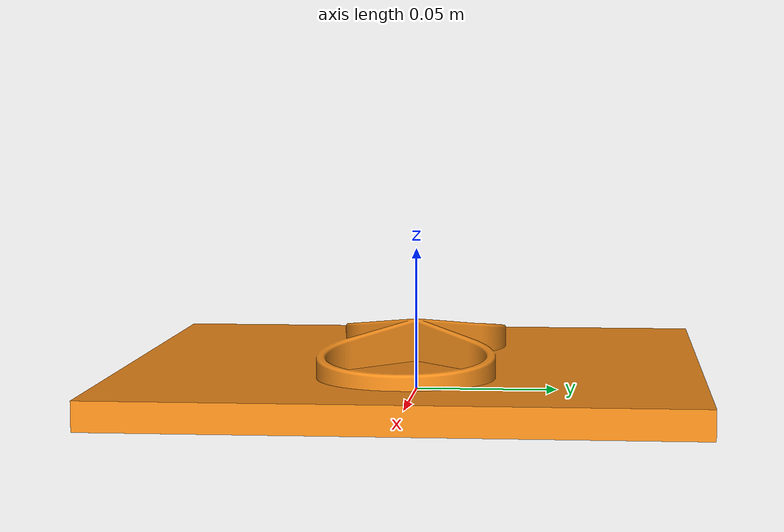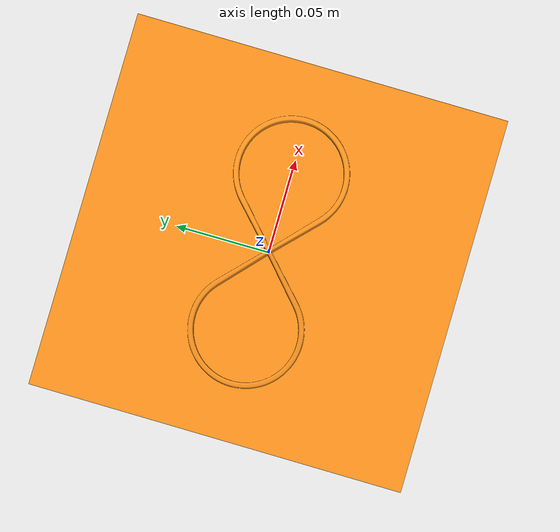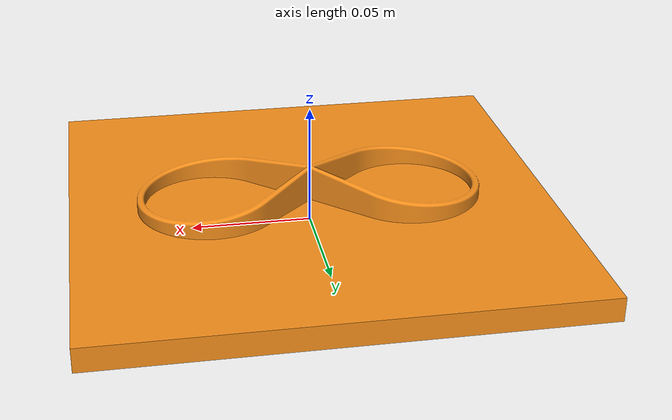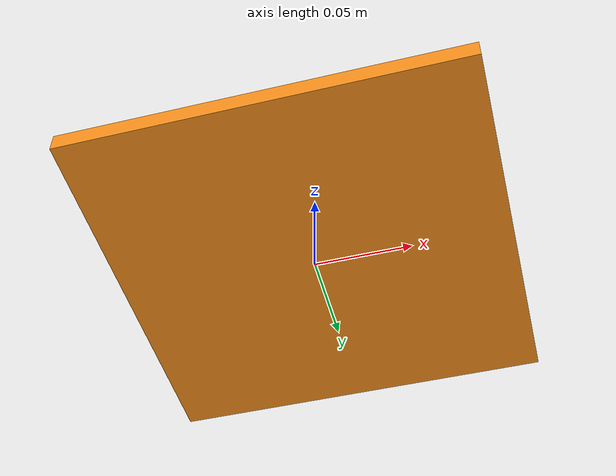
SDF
<?xml version="1.0"?>

<sdf version="1.5">
  <model name='infinity_2_5d'>
    <link name='infinity_2_5d_root_link'>
      <pose>0 0 0 0 0 0</pose>
      <inertial>
	<!-- CoM -->
	<pose>0.0 0.0 0.0</pose>
        <mass>0.2</mass>
        <inertia>
          <ixx>0.001341278976</ixx>
          <ixy>0.0</ixy>
          <ixz>0.0</ixz>
          <iyy>0.001352227712</iyy>
          <iyz>0.0</iyz>
          <izz>0.002684846592</izz>
        </inertia>
      </inertial>
      <collision name='infinity_2_5d_collision'>
        <geometry>
          <mesh><uri>model://cf_infinity_2_5d/infinity_2_5d.stl</uri></mesh>
        </geometry>
	<surface>
          <friction>
            <ode>
              <mu>0.1</mu>
              <mu2>0.1</mu2>
            </ode>
          </friction>
	</surface>
      </collision>
      <visual name='infinity_2_5d_visual'>
        <geometry>
          <mesh><uri>model://cf_infinity_2_5d/infinity_2_5d.dae</uri></mesh>
        </geometry>
        <material>
	  <script>
	    <uri>file://media/materials/scripts/gazebo.material</uri>
	    <name>Gazebo/Orange</name>
	  </script>
        </material>
      </visual>
    </link>
  </model>
</sdf>
